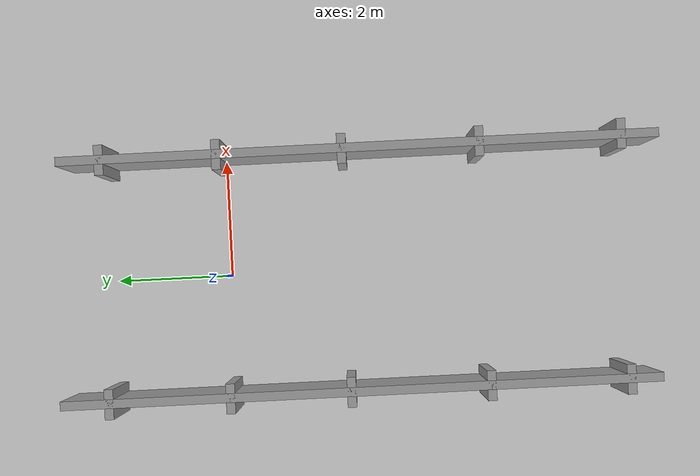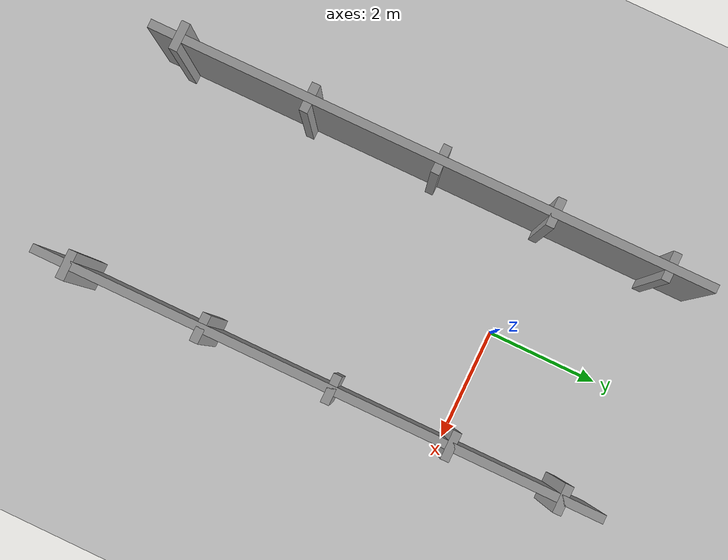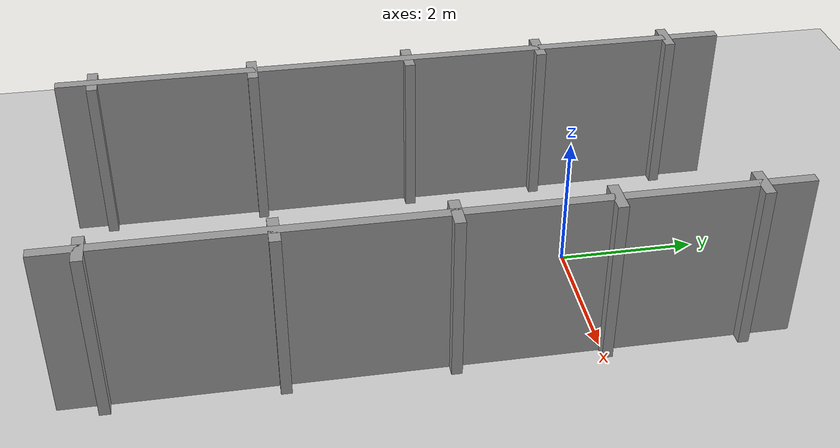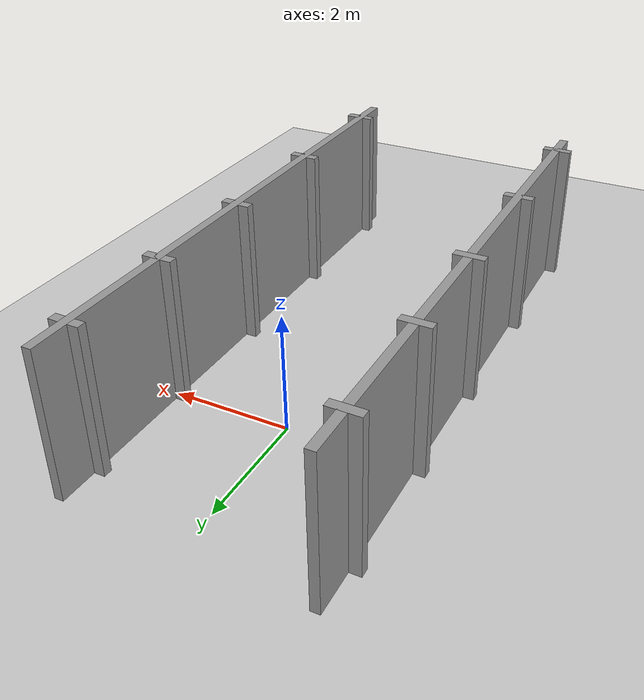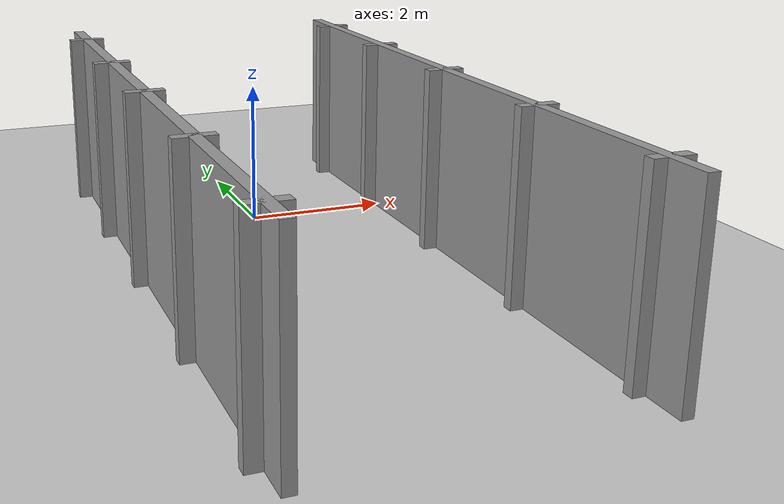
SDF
<sdf version="1.7">
 <world name="default">
  <light name="sun" type="directional">
   <pose>0 0 10 0 -0 0</pose>
   <diffuse>0.8 0.8 0.8 1</diffuse>
   <specular>0.2 0.2 0.2 1</specular>
   <attenuation>
    <range>1000</range>
    <constant>0.9</constant>
    <linear>0.01</linear>
    <quadratic>0.001</quadratic>
   </attenuation>
   <direction>-0.5 0.1 -0.9</direction>
   <spot><inner_angle>0</inner_angle><outer_angle>0</outer_angle><falloff>0</falloff></spot>
  </light>
  <model name="ground_plane">
   <static>1</static>
   <link name="link">
    <collision name="collision">
     <geometry><plane><normal>0 0 1</normal><size>100 100</size></plane></geometry>
     <surface>
      <contact><collide_bitmask>65535</collide_bitmask></contact>
      <friction><ode><mu>100</mu><mu2>50</mu2></ode></friction>
     </surface>
    </collision>
    <visual name="visual">
     <cast_shadows>0</cast_shadows>
     <geometry><plane><normal>0 0 1</normal><size>100 100</size></plane></geometry>
     <material>
      <script><uri>file://media/materials/scripts/gazebo.material</uri><name>Gazebo/Grey</name></script>
     </material>
    </visual>
   </link>
  </model>
  <gravity>0 0 -9.8</gravity>
  <magnetic_field>6e-06 2.3e-05 -4.2e-05</magnetic_field>
  <atmosphere type="adiabatic"/>
  <physics type="ode">
   <max_step_size>0.001</max_step_size>
   <real_time_factor>1</real_time_factor>
   <real_time_update_rate>1000</real_time_update_rate>
  </physics>
  <scene><ambient>0.4 0.4 0.4 1</ambient><background>0.7 0.7 0.7 1</background><shadows>1</shadows></scene>
  <spherical_coordinates>
   <surface_model>EARTH_WGS84</surface_model>
   <latitude_deg>0</latitude_deg>
   <longitude_deg>0</longitude_deg>
   <elevation>0</elevation>
   <heading_deg>0</heading_deg>
  </spherical_coordinates>
  <model name="baraWall">
   <pose>0.003665 -2.24521 0 0 -0 0</pose>
   <link name="Wall_0">
    <collision name="Wall_0_Collision">
     <geometry><box><size>10 0.15 2.5</size></box></geometry>
     <pose>0 0 1.25 0 -0 0</pose>
    </collision>
    <visual name="Wall_0_Visual">
     <pose>0 0 1.25 0 -0 0</pose>
     <geometry><box><size>10 0.15 2.5</size></box></geometry>
     <material>
      <script><uri>file://media/materials/scripts/gazebo.material</uri><name>Gazebo/Grey</name></script>
      <ambient>1 1 1 1</ambient>
     </material>
     <meta><layer>0</layer></meta>
    </visual>
    <pose>-2.01949 0.056 0 0 -0 1.5708</pose>
   </link>
   <link name="Wall_10">
    <collision name="Wall_10_Collision">
     <geometry><box><size>0.5 0.15 2.5</size></box></geometry>
     <pose>0 0 1.25 0 -0 0</pose>
    </collision>
    <visual name="Wall_10_Visual">
     <pose>0 0 1.25 0 -0 0</pose>
     <geometry><box><size>0.5 0.15 2.5</size></box></geometry>
     <material>
      <script><uri>file://media/materials/scripts/gazebo.material</uri><name>Gazebo/Grey</name></script>
      <ambient>1 1 1 1</ambient>
     </material>
     <meta><layer>0</layer></meta>
    </visual>
    <pose>2.01713 2.28539 0 0 -0 3.14159</pose>
   </link>
   <link name="Wall_12">
    <collision name="Wall_12_Collision">
     <geometry><box><size>0.5 0.15 2.5</size></box></geometry>
     <pose>0 0 1.25 0 -0 0</pose>
    </collision>
    <visual name="Wall_12_Visual">
     <pose>0 0 1.25 0 -0 0</pose>
     <geometry><box><size>0.5 0.15 2.5</size></box></geometry>
     <material>
      <script><uri>file://media/materials/scripts/gazebo.material</uri><name>Gazebo/Grey</name></script>
      <ambient>1 1 1 1</ambient>
     </material>
     <meta><layer>0</layer></meta>
    </visual>
    <pose>2.02061 4.22719 0 0 -0 0</pose>
   </link>
   <link name="Wall_14">
    <collision name="Wall_14_Collision">
     <geometry><box><size>0.5 0.15 2.5</size></box></geometry>
     <pose>0 0 1.25 0 -0 0</pose>
    </collision>
    <visual name="Wall_14_Visual">
     <pose>0 0 1.25 0 -0 0</pose>
     <geometry><box><size>0.5 0.15 2.5</size></box></geometry>
     <material>
      <script><uri>file://media/materials/scripts/gazebo.material</uri><name>Gazebo/Grey</name></script>
      <ambient>1 1 1 1</ambient>
     </material>
     <meta><layer>0</layer></meta>
    </visual>
    <pose>2.01604 0.202682 0 0 -0 0</pose>
   </link>
   <link name="Wall_16">
    <collision name="Wall_16_Collision">
     <geometry><box><size>0.5 0.15 2.5</size></box></geometry>
     <pose>0 0 1.25 0 -0 0</pose>
    </collision>
    <visual name="Wall_16_Visual">
     <pose>0 0 1.25 0 -0 0</pose>
     <geometry><box><size>0.5 0.15 2.5</size></box></geometry>
     <material>
      <script><uri>file://media/materials/scripts/gazebo.material</uri><name>Gazebo/Grey</name></script>
      <ambient>1 1 1 1</ambient>
     </material>
     <meta><layer>0</layer></meta>
    </visual>
    <pose>-2.0248 0.2255 0 0 -0 0</pose>
   </link>
   <link name="Wall_18">
    <collision name="Wall_18_Collision">
     <geometry><box><size>0.5 0.15 2.5</size></box></geometry>
     <pose>0 0 1.25 0 -0 0</pose>
    </collision>
    <visual name="Wall_18_Visual">
     <pose>0 0 1.25 0 -0 0</pose>
     <geometry><box><size>0.5 0.15 2.5</size></box></geometry>
     <material>
      <script><uri>file://media/materials/scripts/gazebo.material</uri><name>Gazebo/Grey</name></script>
      <ambient>1 1 1 1</ambient>
     </material>
     <meta><layer>0</layer></meta>
    </visual>
    <pose>2.02762 -2.08037 0 0 -0 0</pose>
   </link>
   <link name="Wall_20">
    <collision name="Wall_20_Collision">
     <geometry><box><size>0.5 0.15 2.5</size></box></geometry>
     <pose>0 0 1.25 0 -0 0</pose>
    </collision>
    <visual name="Wall_20_Visual">
     <pose>0 0 1.25 0 -0 0</pose>
     <geometry><box><size>0.5 0.15 2.5</size></box></geometry>
     <material>
      <script><uri>file://media/materials/scripts/gazebo.material</uri><name>Gazebo/Grey</name></script>
      <ambient>1 1 1 1</ambient>
     </material>
     <meta><layer>0</layer></meta>
    </visual>
    <pose>-2.02762 -2.09766 0 0 -0 0</pose>
   </link>
   <link name="Wall_22">
    <collision name="Wall_22_Collision">
     <geometry><box><size>0.5 0.15 2.5</size></box></geometry>
     <pose>0 0 1.25 0 -0 0</pose>
    </collision>
    <visual name="Wall_22_Visual">
     <pose>0 0 1.25 0 -0 0</pose>
     <geometry><box><size>0.5 0.15 2.5</size></box></geometry>
     <material>
      <script><uri>file://media/materials/scripts/gazebo.material</uri><name>Gazebo/Grey</name></script>
      <ambient>1 1 1 1</ambient>
     </material>
     <meta><layer>0</layer></meta>
    </visual>
    <pose>-2.03626 -4.41493 0 0 -0 0</pose>
   </link>
   <link name="Wall_24">
    <collision name="Wall_24_Collision">
     <geometry><box><size>0.5 0.15 2.5</size></box></geometry>
     <pose>0 0 1.25 0 -0 0</pose>
    </collision>
    <visual name="Wall_24_Visual">
     <pose>0 0 1.25 0 -0 0</pose>
     <geometry><box><size>0.5 0.15 2.5</size></box></geometry>
     <material>
      <script><uri>file://media/materials/scripts/gazebo.material</uri><name>Gazebo/Grey</name></script>
      <ambient>1 1 1 1</ambient>
     </material>
     <meta><layer>0</layer></meta>
    </visual>
    <pose>2.03626 -4.43223 0 0 -0 0</pose>
   </link>
   <link name="Wall_3">
    <collision name="Wall_3_Collision">
     <geometry><box><size>10 0.15 2.5</size></box></geometry>
     <pose>0 0 1.25 0 -0 0</pose>
    </collision>
    <visual name="Wall_3_Visual">
     <pose>0 0 1.25 0 -0 0</pose>
     <geometry><box><size>10 0.15 2.5</size></box></geometry>
     <material>
      <script><uri>file://media/materials/scripts/gazebo.material</uri><name>Gazebo/Grey</name></script>
      <ambient>1 1 1 1</ambient>
     </material>
     <meta><layer>0</layer></meta>
    </visual>
    <pose>2.02601 -0.056 0 0 -0 1.5708</pose>
   </link>
   <link name="Wall_5">
    <collision name="Wall_5_Collision">
     <geometry><box><size>0.5 0.15 2.5</size></box></geometry>
     <pose>0 0 1.25 0 -0 0</pose>
    </collision>
    <visual name="Wall_5_Visual">
     <pose>0 0 1.25 0 -0 0</pose>
     <geometry><box><size>0.5 0.15 2.5</size></box></geometry>
     <material>
      <script><uri>file://media/materials/scripts/gazebo.material</uri><name>Gazebo/Grey</name></script>
      <ambient>1 1 1 1</ambient>
     </material>
     <meta><layer>0</layer></meta>
    </visual>
    <pose>-2.0312 4.24873 0 0 -0 0</pose>
   </link>
   <link name="Wall_8">
    <collision name="Wall_8_Collision">
     <geometry><box><size>0.5 0.15 2.5</size></box></geometry>
     <pose>0 0 1.25 0 -0 0</pose>
    </collision>
    <visual name="Wall_8_Visual">
     <pose>0 0 1.25 0 -0 0</pose>
     <geometry><box><size>0.5 0.15 2.5</size></box></geometry>
     <material>
      <script><uri>file://media/materials/scripts/gazebo.material</uri><name>Gazebo/Grey</name></script>
      <ambient>1 1 1 1</ambient>
     </material>
     <meta><layer>0</layer></meta>
    </visual>
    <pose>-2.03452 2.23308 0 0 -0 0</pose>
   </link>
   <static>1</static>
  </model>
 </world>
</sdf>
